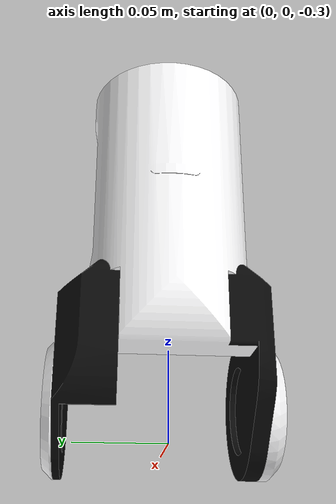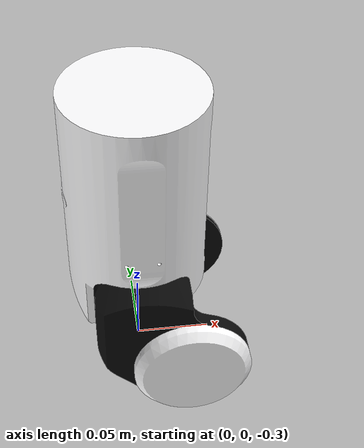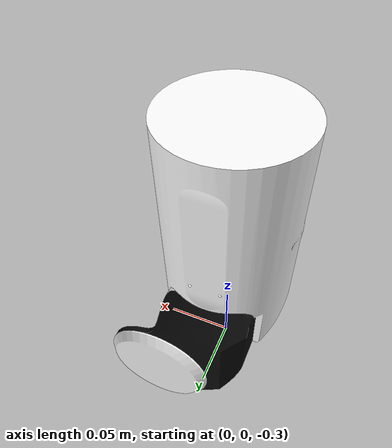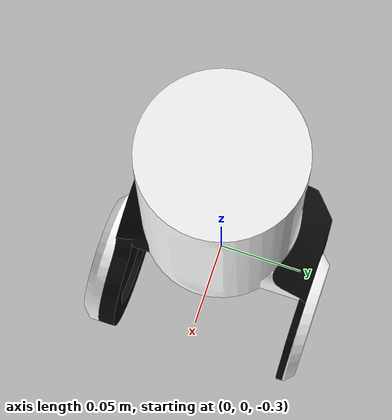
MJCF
<mujoco model="LINK_9">
  <default>
    <default class="visual">
      <geom group="2" type="mesh" contype="0" conaffinity="0"/>
    </default>
    <default class="collision">
      <geom group="3" type="mesh"/>
    </default>
  </default>
  <asset>
    <material name="10,10,10" specular="0.039216" shininess="1.0" rgba="0.039216 0.039216 0.039216 1.000000"/>
    <material name="254,254,255" specular="0.9973853333333333" shininess="1.0" rgba="0.996078 0.996078 1.000000 1.000000"/>
    <mesh file="LINK_9_0.obj"/>
    <mesh file="LINK_9_1.obj"/>
    <mesh file="LINK_9_collision_0.obj"/>
    <mesh file="LINK_9_collision_1.obj"/>
    <mesh file="LINK_9_collision_2.obj"/>
    <mesh file="LINK_9_collision_3.obj"/>
    <mesh file="LINK_9_collision_4.obj"/>
    <mesh file="LINK_9_collision_5.obj"/>
    <mesh file="LINK_9_collision_6.obj"/>
    <mesh file="LINK_9_collision_7.obj"/>
    <mesh file="LINK_9_collision_8.obj"/>
  </asset>
  <worldbody>
    <body name="LINK_9">
      <geom mesh="LINK_9_0" material="254,254,255" class="visual"/>
      <geom mesh="LINK_9_1" material="10,10,10" class="visual"/>
      <geom mesh="LINK_9_collision_0" rgba="0.5554794792972142 0.34297013939349374 0.7456421538490735 1" class="collision"/>
      <geom mesh="LINK_9_collision_1" rgba="0.7817053934634133 0.37987759819975253 0.10928998344646323 1" class="collision"/>
      <geom mesh="LINK_9_collision_2" rgba="0.0499902536571315 0.5723911414511437 0.0015948571811515988 1" class="collision"/>
      <geom mesh="LINK_9_collision_3" rgba="0.12905469765176458 0.919905720339141 0.8484924279228585 1" class="collision"/>
      <geom mesh="LINK_9_collision_4" rgba="0.42523643858134674 0.856622429495471 0.15960628841866886 1" class="collision"/>
      <geom mesh="LINK_9_collision_5" rgba="0.9048880796431116 0.04618770941815764 0.1707141369685471 1" class="collision"/>
      <geom mesh="LINK_9_collision_6" rgba="0.06965902791300571 0.8260886933433239 0.4345409236332186 1" class="collision"/>
      <geom mesh="LINK_9_collision_7" rgba="0.1774905194876395 0.1460919445110913 0.8266763075231239 1" class="collision"/>
      <geom mesh="LINK_9_collision_8" rgba="0.3341277126805995 0.030907511875576388 0.13170537216466627 1" class="collision"/>
    </body>
  </worldbody>
</mujoco>
